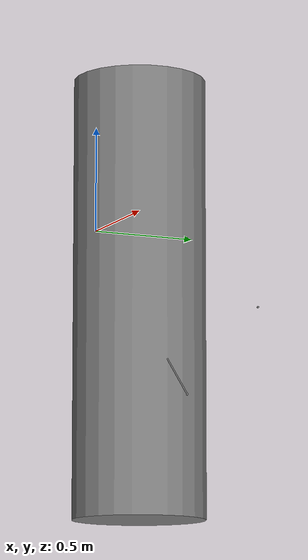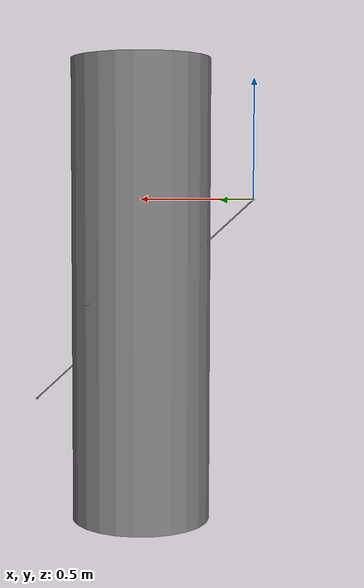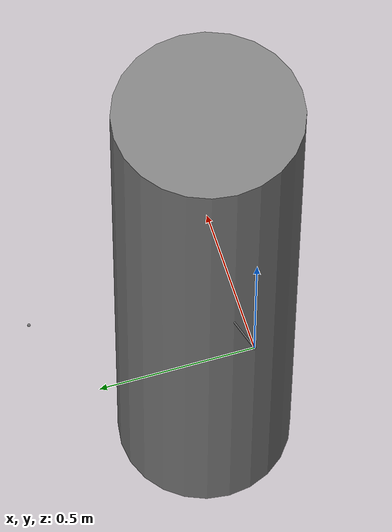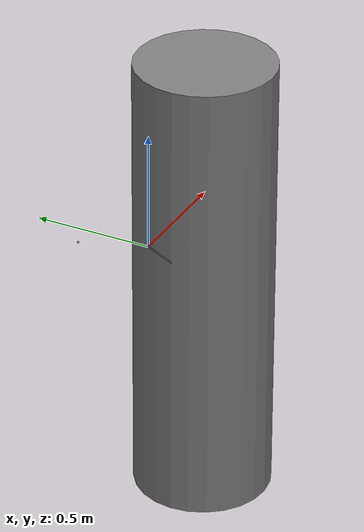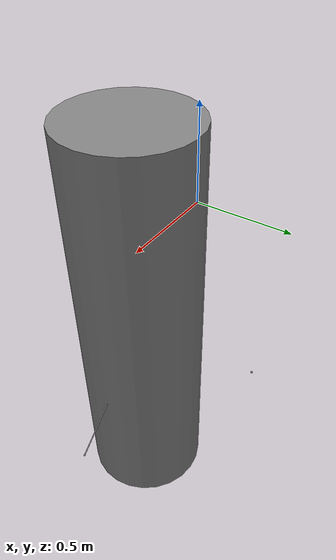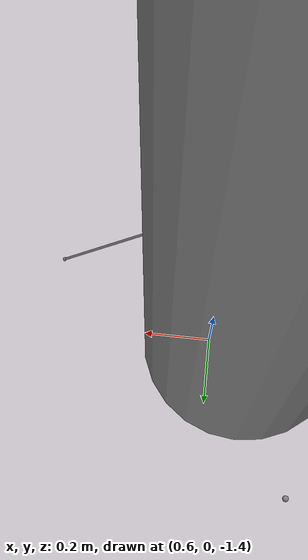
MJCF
<mujoco model="tendon_cylinder_lift">
  <compiler angle="radian"/>
  <option timestep="0.005" gravity="0 0 -9.81"
          integrator="Euler" solver="PGS" cone="pyramidal" iterations="20"/>
  <worldbody>
    <body name="rig" pos="0 0 0">
      <inertial pos="0 0 0" mass="1.0" diaginertia="1.0 1.0 1.0"/>
      <geom name="wrap_cylinder" type="cylinder" size="0.3 1.0" pos="0.5 0 -0.4"/>
      <site name="anchor" pos="0 0 0"/>
      <site name="side" pos="0.5 0.6 -0.4"/>
      <body name="mass" pos="1.0 0 -0.9">
        <inertial pos="0 0 0" mass="1.0" diaginertia="1e-3 1e-3 1e-3"/>
        <joint name="lift" type="slide" axis="0 0 -1" pos="0 0 0" damping="4.0"/>
        <site name="attach" pos="0 0 0"/>
      </body>
    </body>
  </worldbody>
  <tendon>
    <spatial name="cable" springlength="1.5" stiffness="120" damping="8">
      <site site="anchor"/>
      <geom geom="wrap_cylinder" sidesite="side"/>
      <site site="attach"/>
    </spatial>
  </tendon>
  <actuator>
    <motor name="lift_motor" tendon="cable" gear="1" forcerange="-8 8"/>
  </actuator>
</mujoco>
